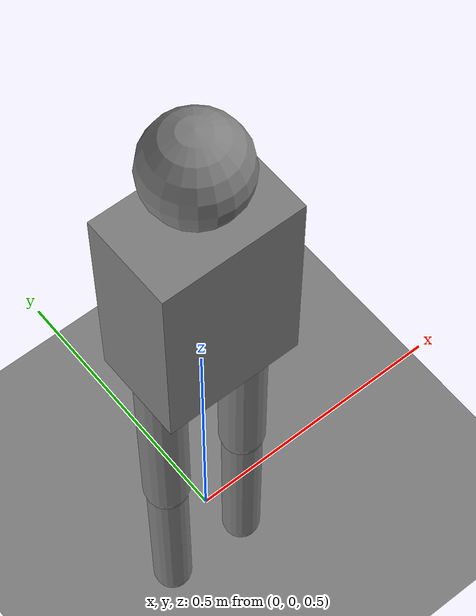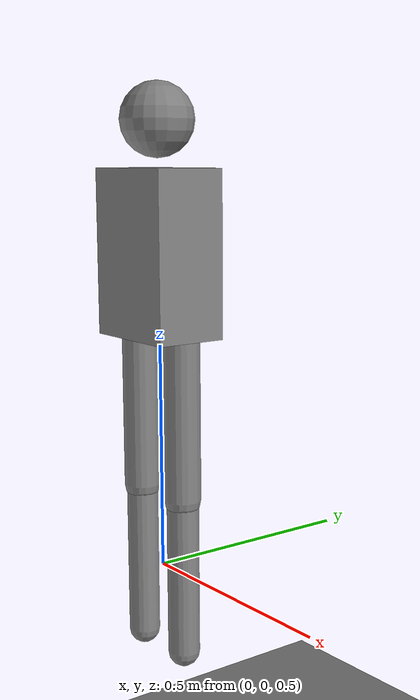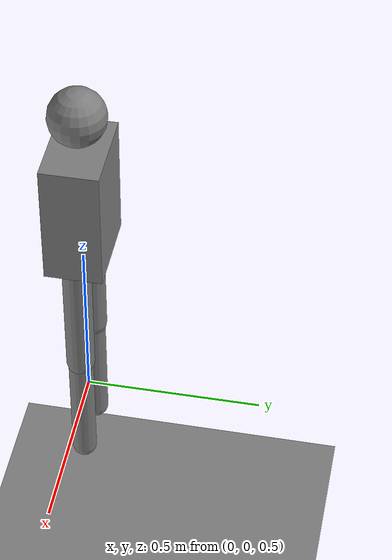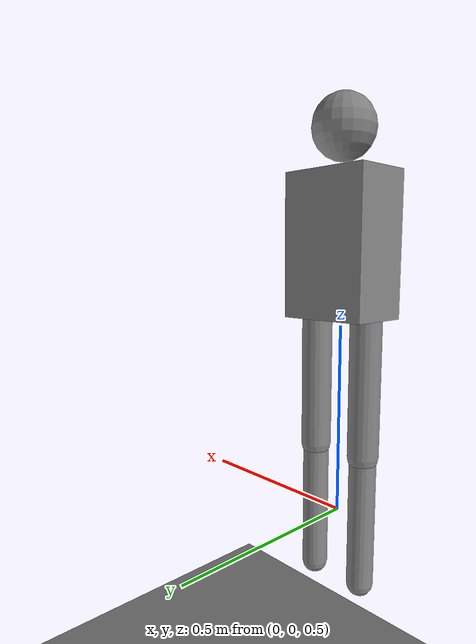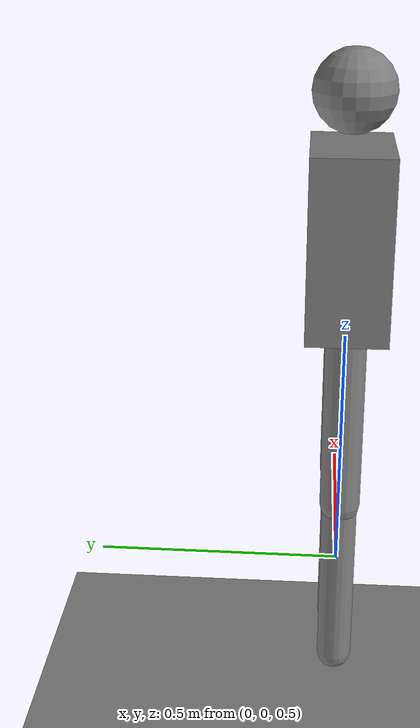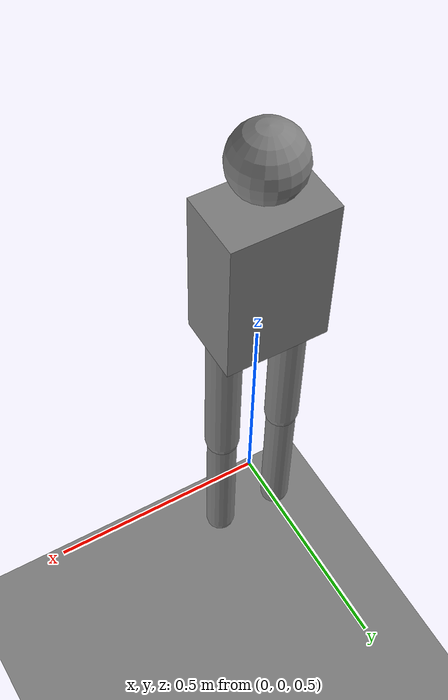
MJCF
<mujoco model="mini_humanoid">

    <option gravity="0 0 -9.81"/>

    <worldbody>

        <geom type="plane" size="5 5 0.1"/>

        <body name="torso" pos="0 0 1.2">

            <joint type="free"/>

            <geom type="box" size="0.12 0.08 0.18"/>

            <body name="head" pos="0 0 0.28">
                <geom type="sphere" size="0.08"/>
            </body>

            <body name="left_thigh" pos="-0.08 0 -0.18">
                <joint name="left_hip" type="hinge" axis="0 1 0"/>
                <geom type="capsule"
                      fromto="0 0 0 0 0 -0.35"
                      size="0.04"/>

                <body name="left_shin" pos="0 0 -0.35">
                    <joint name="left_knee" type="hinge" axis="0 1 0"/>
                    <geom type="capsule"
                          fromto="0 0 0 0 0 -0.35"
                          size="0.035"/>
                </body>
            </body>

            <body name="right_thigh" pos="0.08 0 -0.18">
                <joint name="right_hip" type="hinge" axis="0 1 0"/>
                <geom type="capsule"
                      fromto="0 0 0 0 0 -0.35"
                      size="0.04"/>

                <body name="right_shin" pos="0 0 -0.35">
                    <joint name="right_knee" type="hinge" axis="0 1 0"/>
                    <geom type="capsule"
                          fromto="0 0 0 0 0 -0.35"
                          size="0.035"/>
                </body>
            </body>

        </body>

    </worldbody>

</mujoco>
